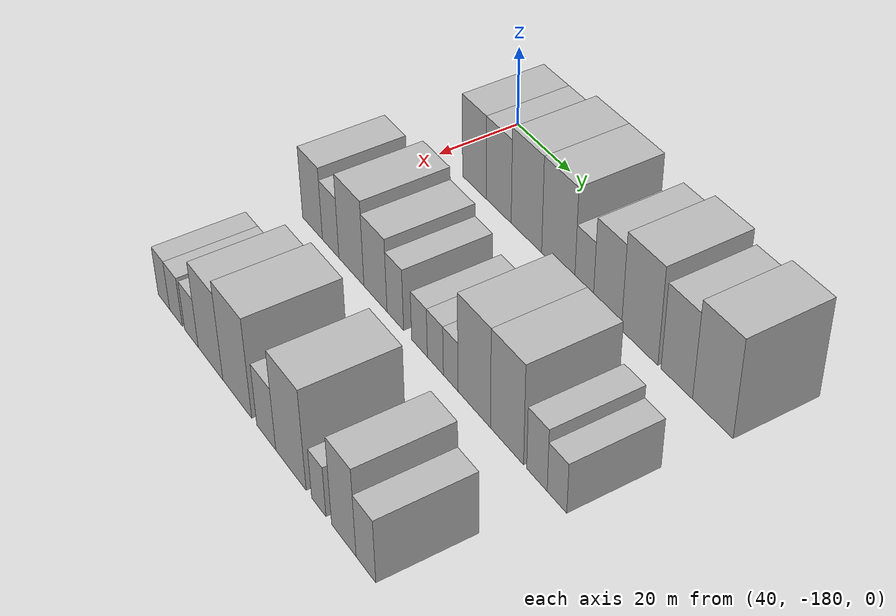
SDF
<sdf version="1.6">
 <world name="default">
  <model name="building_19">
   <static>1</static>
   <pose>50.0000 -166.1909 0 0.000000 0.000000 0.000000</pose>
   <link name="link">
    <pose>0 0 10.50 0 0 0</pose>
    <collision name="collision"><geometry><box><size>20.0000 9.2155 21.0000</size></box></geometry></collision>
    <visual name="visual">
     <cast_shadows>0</cast_shadows>
     <geometry><box><size>20.0000 9.2155 21.0000</size></box></geometry>
     <material>
      <script>
       <uri>model://HANNAS_wall/materials/scripts</uri>
       <uri>model://HANNAS_wall/materials/textures</uri>
       <name>vrc/HANNAS_wall</name>
      </script>
     </material>
    </visual>
   </link>
  </model>
  <model name="building_20">
   <static>1</static>
   <pose>50.0000 -156.8598 0 0.000000 0.000000 0.000000</pose>
   <link name="link">
    <pose>0 0 10.50 0 0 0</pose>
    <collision name="collision"><geometry><box><size>20.0000 9.4467 21.0000</size></box></geometry></collision>
    <visual name="visual">
     <cast_shadows>0</cast_shadows>
     <geometry><box><size>20.0000 9.4467 21.0000</size></box></geometry>
     <material>
      <script>
       <uri>model://HANNAS_wall/materials/scripts</uri>
       <uri>model://HANNAS_wall/materials/textures</uri>
       <name>vrc/HANNAS_wall</name>
      </script>
     </material>
    </visual>
   </link>
  </model>
  <model name="building_21">
   <static>1</static>
   <pose>50.0000 -146.5706 0 0.000000 0.000000 0.000000</pose>
   <link name="link">
    <pose>0 0 12.00 0 0 0</pose>
    <collision name="collision"><geometry><box><size>20.0000 11.1319 24.0000</size></box></geometry></collision>
    <visual name="visual">
     <cast_shadows>0</cast_shadows>
     <geometry><box><size>20.0000 11.1319 24.0000</size></box></geometry>
     <material>
      <script>
       <uri>model://HANNAS_wall/materials/scripts</uri>
       <uri>model://HANNAS_wall/materials/textures</uri>
       <name>vrc/HANNAS_wall</name>
      </script>
     </material>
    </visual>
   </link>
  </model>
  <model name="building_22">
   <static>1</static>
   <pose>50.0000 -135.2333 0 0.000000 0.000000 0.000000</pose>
   <link name="link">
    <pose>0 0 12.00 0 0 0</pose>
    <collision name="collision"><geometry><box><size>20.0000 11.5426 24.0000</size></box></geometry></collision>
    <visual name="visual">
     <cast_shadows>0</cast_shadows>
     <geometry><box><size>20.0000 11.5426 24.0000</size></box></geometry>
     <material>
      <script>
       <uri>model://HANNAS_wall/materials/scripts</uri>
       <uri>model://HANNAS_wall/materials/textures</uri>
       <name>vrc/HANNAS_wall</name>
      </script>
     </material>
    </visual>
   </link>
  </model>
  <model name="building_23">
   <static>1</static>
   <pose>50.0000 -126.3119 0 0.000000 0.000000 0.000000</pose>
   <link name="link">
    <pose>0 0 7.50 0 0 0</pose>
    <collision name="collision"><geometry><box><size>20.0000 6.3001 15.0000</size></box></geometry></collision>
    <visual name="visual">
     <cast_shadows>0</cast_shadows>
     <geometry><box><size>20.0000 6.3001 15.0000</size></box></geometry>
     <material>
      <script>
       <uri>model://HANNAS_wall/materials/scripts</uri>
       <uri>model://HANNAS_wall/materials/textures</uri>
       <name>vrc/HANNAS_wall</name>
      </script>
     </material>
    </visual>
   </link>
  </model>
  <model name="building_24">
   <static>1</static>
   <pose>50.0000 -118.5132 0 0.000000 0.000000 0.000000</pose>
   <link name="link">
    <pose>0 0 10.50 0 0 0</pose>
    <collision name="collision"><geometry><box><size>20.0000 9.2973 21.0000</size></box></geometry></collision>
    <visual name="visual">
     <cast_shadows>0</cast_shadows>
     <geometry><box><size>20.0000 9.2973 21.0000</size></box></geometry>
     <material>
      <script>
       <uri>model://HANNAS_wall/materials/scripts</uri>
       <uri>model://HANNAS_wall/materials/textures</uri>
       <name>vrc/HANNAS_wall</name>
      </script>
     </material>
    </visual>
   </link>
  </model>
  <model name="building_25">
   <static>1</static>
   <pose>50.0000 -108.0796 0 0.000000 0.000000 0.000000</pose>
   <link name="link">
    <pose>0 0 12.00 0 0 0</pose>
    <collision name="collision"><geometry><box><size>20.0000 11.5699 24.0000</size></box></geometry></collision>
    <visual name="visual">
     <cast_shadows>0</cast_shadows>
     <geometry><box><size>20.0000 11.5699 24.0000</size></box></geometry>
     <material>
      <script>
       <uri>model://HANNAS_wall/materials/scripts</uri>
       <uri>model://HANNAS_wall/materials/textures</uri>
       <name>vrc/HANNAS_wall</name>
      </script>
     </material>
    </visual>
   </link>
  </model>
  <model name="building_26">
   <static>1</static>
   <pose>50.0000 -96.5357 0 0.000000 0.000000 0.000000</pose>
   <link name="link">
    <pose>0 0 10.50 0 0 0</pose>
    <collision name="collision"><geometry><box><size>20.0000 9.5178 21.0000</size></box></geometry></collision>
    <visual name="visual">
     <cast_shadows>0</cast_shadows>
     <geometry><box><size>20.0000 9.5178 21.0000</size></box></geometry>
     <material>
      <script>
       <uri>model://HANNAS_wall/materials/scripts</uri>
       <uri>model://HANNAS_wall/materials/textures</uri>
       <name>vrc/HANNAS_wall</name>
      </script>
     </material>
    </visual>
   </link>
  </model>
  <model name="building_27">
   <static>1</static>
   <pose>50.0000 -85.8645 0 0.000000 0.000000 0.000000</pose>
   <link name="link">
    <pose>0 0 12.00 0 0 0</pose>
    <collision name="collision"><geometry><box><size>20.0000 11.8246 24.0000</size></box></geometry></collision>
    <visual name="visual">
     <cast_shadows>0</cast_shadows>
     <geometry><box><size>20.0000 11.8246 24.0000</size></box></geometry>
     <material>
      <script>
       <uri>model://HANNAS_wall/materials/scripts</uri>
       <uri>model://HANNAS_wall/materials/textures</uri>
       <name>vrc/HANNAS_wall</name>
      </script>
     </material>
    </visual>
   </link>
  </model>
  <model name="building_100">
   <static>1</static>
   <pose>85.0000 -172.2699 0 0.000000 0.000000 0.000000</pose>
   <link name="link">
    <pose>0 0 9.00 0 0 0</pose>
    <collision name="collision"><geometry><box><size>20.0000 8.4433 18.0000</size></box></geometry></collision>
    <visual name="visual">
     <cast_shadows>0</cast_shadows>
     <geometry><box><size>20.0000 8.4433 18.0000</size></box></geometry>
     <material>
      <script>
       <uri>model://HANNAS_wall/materials/scripts</uri>
       <uri>model://HANNAS_wall/materials/textures</uri>
       <name>vrc/HANNAS_wall</name>
      </script>
     </material>
    </visual>
   </link>
  </model>
  <model name="building_101">
   <static>1</static>
   <pose>85.0000 -164.6258 0 0.000000 0.000000 0.000000</pose>
   <link name="link">
    <pose>0 0 7.50 0 0 0</pose>
    <collision name="collision"><geometry><box><size>20.0000 6.8450 15.0000</size></box></geometry></collision>
    <visual name="visual">
     <cast_shadows>0</cast_shadows>
     <geometry><box><size>20.0000 6.8450 15.0000</size></box></geometry>
     <material>
      <script>
       <uri>model://HANNAS_wall/materials/scripts</uri>
       <uri>model://HANNAS_wall/materials/textures</uri>
       <name>vrc/HANNAS_wall</name>
      </script>
     </material>
    </visual>
   </link>
  </model>
  <model name="building_102">
   <static>1</static>
   <pose>85.0000 -156.1647 0 0.000000 0.000000 0.000000</pose>
   <link name="link">
    <pose>0 0 10.50 0 0 0</pose>
    <collision name="collision"><geometry><box><size>20.0000 10.0772 21.0000</size></box></geometry></collision>
    <visual name="visual">
     <cast_shadows>0</cast_shadows>
     <geometry><box><size>20.0000 10.0772 21.0000</size></box></geometry>
     <material>
      <script>
       <uri>model://HANNAS_wall/materials/scripts</uri>
       <uri>model://HANNAS_wall/materials/textures</uri>
       <name>vrc/HANNAS_wall</name>
      </script>
     </material>
    </visual>
   </link>
  </model>
  <model name="building_103">
   <static>1</static>
   <pose>85.0000 -146.6313 0 0.000000 0.000000 0.000000</pose>
   <link name="link">
    <pose>0 0 9.00 0 0 0</pose>
    <collision name="collision"><geometry><box><size>20.0000 8.9896 18.0000</size></box></geometry></collision>
    <visual name="visual">
     <cast_shadows>0</cast_shadows>
     <geometry><box><size>20.0000 8.9896 18.0000</size></box></geometry>
     <material>
      <script>
       <uri>model://HANNAS_wall/materials/scripts</uri>
       <uri>model://HANNAS_wall/materials/textures</uri>
       <name>vrc/HANNAS_wall</name>
      </script>
     </material>
    </visual>
   </link>
  </model>
  <model name="building_104">
   <static>1</static>
   <pose>85.0000 -139.0014 0 0.000000 0.000000 0.000000</pose>
   <link name="link">
    <pose>0 0 7.50 0 0 0</pose>
    <collision name="collision"><geometry><box><size>20.0000 6.2702 15.0000</size></box></geometry></collision>
    <visual name="visual">
     <cast_shadows>0</cast_shadows>
     <geometry><box><size>20.0000 6.2702 15.0000</size></box></geometry>
     <material>
      <script>
       <uri>model://HANNAS_wall/materials/scripts</uri>
       <uri>model://HANNAS_wall/materials/textures</uri>
       <name>vrc/HANNAS_wall</name>
      </script>
     </material>
    </visual>
   </link>
  </model>
  <model name="building_105">
   <static>1</static>
   <pose>85.0000 -129.9901 0 0.000000 0.000000 0.000000</pose>
   <link name="link">
    <pose>0 0 6.00 0 0 0</pose>
    <collision name="collision"><geometry><box><size>20.0000 5.7524 12.0000</size></box></geometry></collision>
    <visual name="visual">
     <cast_shadows>0</cast_shadows>
     <geometry><box><size>20.0000 5.7524 12.0000</size></box></geometry>
     <material>
      <script>
       <uri>model://HANNAS_wall/materials/scripts</uri>
       <uri>model://HANNAS_wall/materials/textures</uri>
       <name>vrc/HANNAS_wall</name>
      </script>
     </material>
    </visual>
   </link>
  </model>
  <model name="building_106">
   <static>1</static>
   <pose>85.0000 -124.2565 0 0.000000 0.000000 0.000000</pose>
   <link name="link">
    <pose>0 0 6.00 0 0 0</pose>
    <collision name="collision"><geometry><box><size>20.0000 5.7148 12.0000</size></box></geometry></collision>
    <visual name="visual">
     <cast_shadows>0</cast_shadows>
     <geometry><box><size>20.0000 5.7148 12.0000</size></box></geometry>
     <material>
      <script>
       <uri>model://HANNAS_wall/materials/scripts</uri>
       <uri>model://HANNAS_wall/materials/textures</uri>
       <name>vrc/HANNAS_wall</name>
      </script>
     </material>
    </visual>
   </link>
  </model>
  <model name="building_107">
   <static>1</static>
   <pose>85.0000 -118.8142 0 0.000000 0.000000 0.000000</pose>
   <link name="link">
    <pose>0 0 6.00 0 0 0</pose>
    <collision name="collision"><geometry><box><size>20.0000 5.1698 12.0000</size></box></geometry></collision>
    <visual name="visual">
     <cast_shadows>0</cast_shadows>
     <geometry><box><size>20.0000 5.1698 12.0000</size></box></geometry>
     <material>
      <script>
       <uri>model://HANNAS_wall/materials/scripts</uri>
       <uri>model://HANNAS_wall/materials/textures</uri>
       <name>vrc/HANNAS_wall</name>
      </script>
     </material>
    </visual>
   </link>
  </model>
  <model name="building_108">
   <static>1</static>
   <pose>85.0000 -110.7447 0 0.000000 0.000000 0.000000</pose>
   <link name="link">
    <pose>0 0 12.00 0 0 0</pose>
    <collision name="collision"><geometry><box><size>20.0000 10.9692 24.0000</size></box></geometry></collision>
    <visual name="visual">
     <cast_shadows>0</cast_shadows>
     <geometry><box><size>20.0000 10.9692 24.0000</size></box></geometry>
     <material>
      <script>
       <uri>model://HANNAS_wall/materials/scripts</uri>
       <uri>model://HANNAS_wall/materials/textures</uri>
       <name>vrc/HANNAS_wall</name>
      </script>
     </material>
    </visual>
   </link>
  </model>
  <model name="building_109">
   <static>1</static>
   <pose>85.0000 -99.9073 0 0.000000 0.000000 0.000000</pose>
   <link name="link">
    <pose>0 0 12.00 0 0 0</pose>
    <collision name="collision"><geometry><box><size>20.0000 10.7057 24.0000</size></box></geometry></collision>
    <visual name="visual">
     <cast_shadows>0</cast_shadows>
     <geometry><box><size>20.0000 10.7057 24.0000</size></box></geometry>
     <material>
      <script>
       <uri>model://HANNAS_wall/materials/scripts</uri>
       <uri>model://HANNAS_wall/materials/textures</uri>
       <name>vrc/HANNAS_wall</name>
      </script>
     </material>
    </visual>
   </link>
  </model>
  <model name="building_110">
   <static>1</static>
   <pose>85.0000 -90.3620 0 0.000000 0.000000 0.000000</pose>
   <link name="link">
    <pose>0 0 7.50 0 0 0</pose>
    <collision name="collision"><geometry><box><size>20.0000 6.3848 15.0000</size></box></geometry></collision>
    <visual name="visual">
     <cast_shadows>0</cast_shadows>
     <geometry><box><size>20.0000 6.3848 15.0000</size></box></geometry>
     <material>
      <script>
       <uri>model://HANNAS_wall/materials/scripts</uri>
       <uri>model://HANNAS_wall/materials/textures</uri>
       <name>vrc/HANNAS_wall</name>
      </script>
     </material>
    </visual>
   </link>
  </model>
  <model name="building_111">
   <static>1</static>
   <pose>85.0000 -84.1899 0 0.000000 0.000000 0.000000</pose>
   <link name="link">
    <pose>0 0 6.00 0 0 0</pose>
    <collision name="collision"><geometry><box><size>20.0000 5.9594 12.0000</size></box></geometry></collision>
    <visual name="visual">
     <cast_shadows>0</cast_shadows>
     <geometry><box><size>20.0000 5.9594 12.0000</size></box></geometry>
     <material>
      <script>
       <uri>model://HANNAS_wall/materials/scripts</uri>
       <uri>model://HANNAS_wall/materials/textures</uri>
       <name>vrc/HANNAS_wall</name>
      </script>
     </material>
    </visual>
   </link>
  </model>
  <model name="building_186">
   <static>1</static>
   <pose>120.0000 -167.7123 0 0.000000 0.000000 0.000000</pose>
   <link name="link">
    <pose>0 0 6.00 0 0 0</pose>
    <collision name="collision"><geometry><box><size>20.0000 5.2181 12.0000</size></box></geometry></collision>
    <visual name="visual">
     <cast_shadows>0</cast_shadows>
     <geometry><box><size>20.0000 5.2181 12.0000</size></box></geometry>
     <material>
      <script>
       <uri>model://HANNAS_wall/materials/scripts</uri>
       <uri>model://HANNAS_wall/materials/textures</uri>
       <name>vrc/HANNAS_wall</name>
      </script>
     </material>
    </visual>
   </link>
  </model>
  <model name="building_187">
   <static>1</static>
   <pose>120.0000 -162.2536 0 0.000000 0.000000 0.000000</pose>
   <link name="link">
    <pose>0 0 6.00 0 0 0</pose>
    <collision name="collision"><geometry><box><size>20.0000 5.6994 12.0000</size></box></geometry></collision>
    <visual name="visual">
     <cast_shadows>0</cast_shadows>
     <geometry><box><size>20.0000 5.6994 12.0000</size></box></geometry>
     <material>
      <script>
       <uri>model://HANNAS_wall/materials/scripts</uri>
       <uri>model://HANNAS_wall/materials/textures</uri>
       <name>vrc/HANNAS_wall</name>
      </script>
     </material>
    </visual>
   </link>
  </model>
  <model name="building_188">
   <static>1</static>
   <pose>120.0000 -155.4128 0 0.000000 0.000000 0.000000</pose>
   <link name="link">
    <pose>0 0 6.00 0 0 0</pose>
    <collision name="collision"><geometry><box><size>20.0000 5.9821 12.0000</size></box></geometry></collision>
    <visual name="visual">
     <cast_shadows>0</cast_shadows>
     <geometry><box><size>20.0000 5.9821 12.0000</size></box></geometry>
     <material>
      <script>
       <uri>model://HANNAS_wall/materials/scripts</uri>
       <uri>model://HANNAS_wall/materials/textures</uri>
       <name>vrc/HANNAS_wall</name>
      </script>
     </material>
    </visual>
   </link>
  </model>
  <model name="building_189">
   <static>1</static>
   <pose>120.0000 -147.1974 0 0.000000 0.000000 0.000000</pose>
   <link name="link">
    <pose>0 0 10.50 0 0 0</pose>
    <collision name="collision"><geometry><box><size>20.0000 10.4488 21.0000</size></box></geometry></collision>
    <visual name="visual">
     <cast_shadows>0</cast_shadows>
     <geometry><box><size>20.0000 10.4488 21.0000</size></box></geometry>
     <material>
      <script>
       <uri>model://HANNAS_wall/materials/scripts</uri>
       <uri>model://HANNAS_wall/materials/textures</uri>
       <name>vrc/HANNAS_wall</name>
      </script>
     </material>
    </visual>
   </link>
  </model>
  <model name="building_190">
   <static>1</static>
   <pose>120.0000 -136.1210 0 0.000000 0.000000 0.000000</pose>
   <link name="link">
    <pose>0 0 12.00 0 0 0</pose>
    <collision name="collision"><geometry><box><size>20.0000 11.7040 24.0000</size></box></geometry></collision>
    <visual name="visual">
     <cast_shadows>0</cast_shadows>
     <geometry><box><size>20.0000 11.7040 24.0000</size></box></geometry>
     <material>
      <script>
       <uri>model://HANNAS_wall/materials/scripts</uri>
       <uri>model://HANNAS_wall/materials/textures</uri>
       <name>vrc/HANNAS_wall</name>
      </script>
     </material>
    </visual>
   </link>
  </model>
  <model name="building_191">
   <static>1</static>
   <pose>120.0000 -124.5819 0 0.000000 0.000000 0.000000</pose>
   <link name="link">
    <pose>0 0 7.50 0 0 0</pose>
    <collision name="collision"><geometry><box><size>20.0000 7.3744 15.0000</size></box></geometry></collision>
    <visual name="visual">
     <cast_shadows>0</cast_shadows>
     <geometry><box><size>20.0000 7.3744 15.0000</size></box></geometry>
     <material>
      <script>
       <uri>model://HANNAS_wall/materials/scripts</uri>
       <uri>model://HANNAS_wall/materials/textures</uri>
       <name>vrc/HANNAS_wall</name>
      </script>
     </material>
    </visual>
   </link>
  </model>
  <model name="building_192">
   <static>1</static>
   <pose>120.0000 -115.2310 0 0.000000 0.000000 0.000000</pose>
   <link name="link">
    <pose>0 0 12.00 0 0 0</pose>
    <collision name="collision"><geometry><box><size>20.0000 11.3274 24.0000</size></box></geometry></collision>
    <visual name="visual">
     <cast_shadows>0</cast_shadows>
     <geometry><box><size>20.0000 11.3274 24.0000</size></box></geometry>
     <material>
      <script>
       <uri>model://HANNAS_wall/materials/scripts</uri>
       <uri>model://HANNAS_wall/materials/textures</uri>
       <name>vrc/HANNAS_wall</name>
      </script>
     </material>
    </visual>
   </link>
  </model>
  <model name="building_193">
   <static>1</static>
   <pose>120.0000 -105.0055 0 0.000000 0.000000 0.000000</pose>
   <link name="link">
    <pose>0 0 6.00 0 0 0</pose>
    <collision name="collision"><geometry><box><size>20.0000 5.1235 12.0000</size></box></geometry></collision>
    <visual name="visual">
     <cast_shadows>0</cast_shadows>
     <geometry><box><size>20.0000 5.1235 12.0000</size></box></geometry>
     <material>
      <script>
       <uri>model://HANNAS_wall/materials/scripts</uri>
       <uri>model://HANNAS_wall/materials/textures</uri>
       <name>vrc/HANNAS_wall</name>
      </script>
     </material>
    </visual>
   </link>
  </model>
  <model name="building_194">
   <static>1</static>
   <pose>120.0000 -96.2284 0 0.000000 0.000000 0.000000</pose>
   <link name="link">
    <pose>0 0 10.50 0 0 0</pose>
    <collision name="collision"><geometry><box><size>20.0000 8.4308 21.0000</size></box></geometry></collision>
    <visual name="visual">
     <cast_shadows>0</cast_shadows>
     <geometry><box><size>20.0000 8.4308 21.0000</size></box></geometry>
     <material>
      <script>
       <uri>model://HANNAS_wall/materials/scripts</uri>
       <uri>model://HANNAS_wall/materials/textures</uri>
       <name>vrc/HANNAS_wall</name>
      </script>
     </material>
    </visual>
   </link>
  </model>
  <model name="building_195">
   <static>1</static>
   <pose>120.0000 -88.7289 0 0.000000 0.000000 0.000000</pose>
   <link name="link">
    <pose>0 0 7.50 0 0 0</pose>
    <collision name="collision"><geometry><box><size>20.0000 6.5682 15.0000</size></box></geometry></collision>
    <visual name="visual">
     <cast_shadows>0</cast_shadows>
     <geometry><box><size>20.0000 6.5682 15.0000</size></box></geometry>
     <material>
      <script>
       <uri>model://HANNAS_wall/materials/scripts</uri>
       <uri>model://HANNAS_wall/materials/textures</uri>
       <name>vrc/HANNAS_wall</name>
      </script>
     </material>
    </visual>
   </link>
  </model>
 </world>
</sdf>
